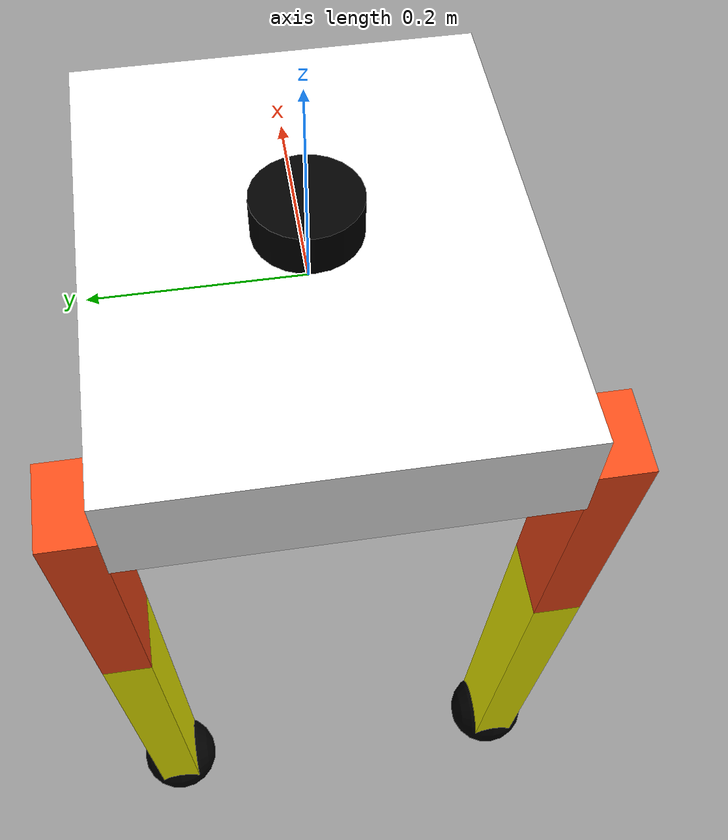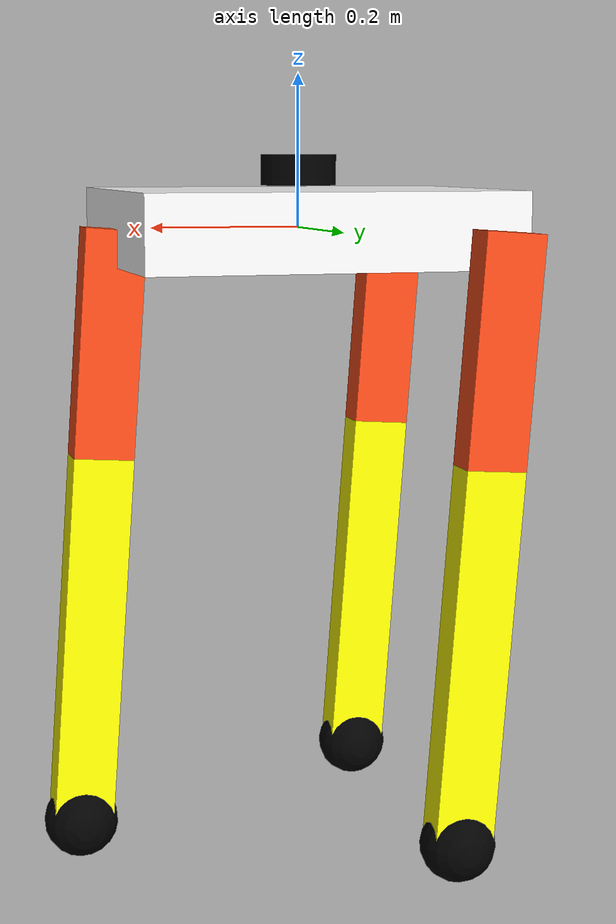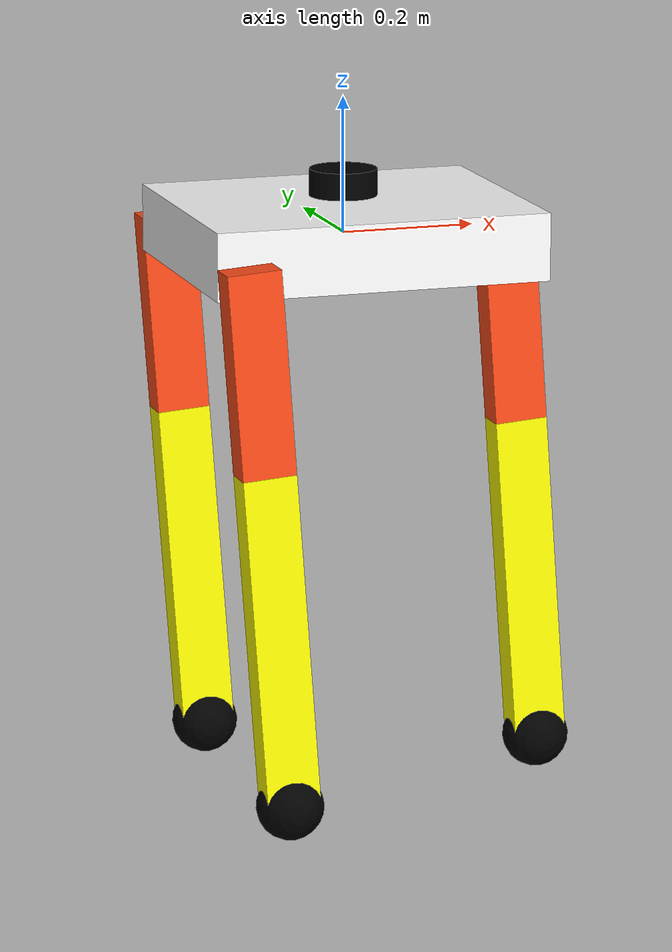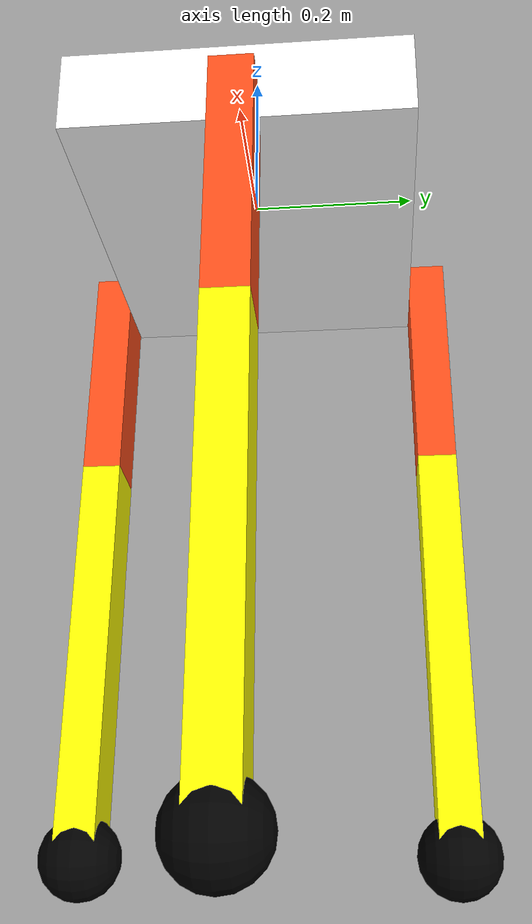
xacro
<?xml version="1.0"?>
<robot xmlns:xacro="http://www.ros.org/wiki/xacro"  name="robot">

<xacro:include filename="materials.xacro" />
<xacro:include filename="inertial_macros.xacro" />
    <!-- base link-->
    <link name="base_link">

    </link>

    <!--main base link-->

    <xacro:include filename="robot_base_square.xacro" />

    <!-- base to chasiis-->
    <joint name="base_link_joint" type="fixed">
        <parent link="base_link"/>
        <child link="main_base_square"/>
        <origin xyz="-0.21 0 0"/>
    </joint>

    <xacro:include filename="robot_legs.xacro" />

    <!-- base to leg 1-->
    <joint name="base_leg1_joint" type="revolute">
        <parent link="main_base_square"/>
        <child link="leg1_1"/>
        <origin xyz="0.46 0 0" rpy="-${pi/2} 0 0"/>
        <limit lower="1" upper="2" effort="200.0" velocity="4.0"/>
        <dynamics friction="0.0" />
        <axis xyz="0 0 1"/>
    </joint>

        <!-- base to leg 2-->
    <joint name="base_leg2_joint" type="revolute">
        <parent link="main_base_square"/>
        <child link="leg2_1"/>
        <origin xyz="0 0.225 0" rpy="-${pi/2} 0 0"/>
        <limit lower="1" upper="2" effort="200.0" velocity="4.0"/>
        <dynamics friction="0.0" />
        <axis xyz="0 0 1"/>
    </joint>

        <!-- base to leg 3-->
    <joint name="base_leg3_joint" type="revolute">
        <parent link="main_base_square"/>
        <child link="leg3_1"/>
        <origin xyz="0 -0.225 0" rpy="${pi/2} 0 0"/>
        <limit lower="1" upper="2" effort="200.0" velocity="4.0"/>
        <dynamics friction="0.0" />
        <axis xyz="0 0 -1"/>
    </joint>

        <!-- adding transmission file here-->

    <xacro:include filename="robot_transmission.xacro" />

</robot>

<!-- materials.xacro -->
<robot xmlns:xacro="http://www.ros.org/wiki/xacro"  >

  <material name="white">
    <color rgba="1 1 1 1"/>
  </material>

  <material name="black">
    <color rgba="0 0 0 1"/>
  </material>

  <material name="orange">
    <color rgba="1 0.3 0.1 1"/>
  </material>

  <material name="red">
    <color rgba="1 0 0 1"/>
  </material>

  <material name="green">
    <color rgba="0 1 0 1"/>
  </material>

  <material name="blue">
    <color rgba="0 0 1 1"/>
  </material>

  <material name="cyan">
    <color rgba="0 1 1 1"/>
  </material>

  <material name="yellow">
    <color rgba="1 1 0 1"/>
  </material>

  <material name="magenta">
    <color rgba="1 0 1 1"/>
  </material>

</robot>

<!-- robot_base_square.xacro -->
<robot xmlns:xacro="http://www.ros.org/wiki/xacro" >

<!--main base plate-->

<link name="main_base_square">
    <visual>
        <origin xyz="0.21 0 0"/>
        <geometry>
            <box size="0.5 0.4 0.1"/>
        </geometry>
        <material name="white"/>
    </visual>

    <collision>
        <origin xyz="0.21 0 0"/>
        <geometry>
            <box size="0.5 0.4 0.1"/>
        </geometry>
    </collision>

    <xacro:inertial_box mass="5" x="0.5" y="0.4" z="0.1">
       <origin xyz="0.21 0 0" rpy="0 0 0"/>
    </xacro:inertial_box>
</link>

<gazebo reference="main_base_square">
    <material>Gazebo/White</material>
    <mu1>100000.0</mu1>
    <mu2>100000.0</mu2>
</gazebo>

<!--joint between base plate and lidar-->

<joint name="base_lidar_joint" type="fixed">
    <parent link="main_base_square"/>
    <child link="lidar"/>
    <origin xyz="0.21 0 0.05" rpy="0 0 0"/>
</joint>

<!--lidar link-->

<link name="lidar">
    <visual>
        <origin xyz="0 0 0.025"/>
        <geometry>
            <cylinder length="0.04" radius="0.05"/>
        </geometry>
        <material name="black"/>
    </visual>

    <collision>
        <origin xyz="0 0 0.025"/>
        <geometry>
            <cylinder length="0.04" radius="0.05"/>
        </geometry>
    </collision>

    <xacro:inertial_cylinder mass="0.1" length="0.04" radius="0.05">
       <origin xyz="0 0 0.025" rpy="0 0 0"/>
    </xacro:inertial_cylinder>
</link>

<gazebo reference="lidar">
    <material>Gazebo/Black</material>
    <mu1>100000.0</mu1>
    <mu2>100000.0</mu2>
</gazebo>

</robot>

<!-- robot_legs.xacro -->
<robot xmlns:xacro="http://www.ros.org/wiki/xacro" >

<!-- leg 1-->
<link name="leg1_1">
    <visual>
        <origin xyz="0.15 0 0"/>
        <geometry>
            <box size="0.3 0.08 0.05"/>
        </geometry>
        <material name="orange"/>
    </visual>

    <collision>
        <origin xyz="0.15 0 0"/>
        <geometry>
            <box size="0.3 0.08 0.05"/>
        </geometry>
    </collision>

    <xacro:inertial_box mass="0.3" x="0.3" y="0.08" z="0.05">
       <origin xyz="0.15 0 0" rpy="0 0 0"/>
    </xacro:inertial_box>
</link>

<gazebo reference="leg1_1">
    <material>Gazebo/Orange</material>
    <mu1>100000.0</mu1>
    <mu2>100000.0</mu2>
</gazebo>

<joint name="leg1_joint" type="revolute">
    <parent link="leg1_1"/>
    <child link="leg1_2"/>
    <origin xyz="0.3 0 0"/>
    <limit lower="0" upper="1" effort="200.0" velocity="4.0"/>
    <dynamics friction="0.0" />
    <axis xyz="0 0 1"/>
</joint>

<link name="leg1_2">
    <visual>
        <origin xyz="0.25 0 0"/>
        <geometry>
            <box size="0.5 0.08 0.05"/>
        </geometry>
        <material name="yellow"/>
    </visual>

    <collision>
        <origin xyz="0.25 0 0"/>
        <geometry>
            <box size="0.5 0.08 0.05"/>
        </geometry>
    </collision>
    <xacro:inertial_box mass="0.5" x="0.5" y="0.08" z="0.05">
       <origin xyz="0.25 0 0" rpy="0 0 0"/>
    </xacro:inertial_box>
</link>

<gazebo reference="leg1_2">
    <material>Gazebo/Yellow</material>
    <surface>
        <friction>
        <ode>
            <mu>100000.0</mu>
            <mu2>100000.0</mu2>
        </ode>
        <torsional>
            <coefficient>1000000</coefficient>
        </torsional>
        </friction>
    </surface>
</gazebo>

<joint name="leg1_tip_joint" type="fixed">
    <parent link="leg1_2"/>
    <child link="leg1_tip"/>
    <origin xyz="0.5 0 0"/>
</joint>

<link name="leg1_tip">
    <visual>
        <origin xyz="0 0 0"/>
        <geometry>
            <sphere radius="0.05"/>
        </geometry>
        <material name="black"/>
    </visual>

    <collision>
        <origin xyz="0 0 0"/>
        <geometry>
            <sphere radius="0.05"/>
        </geometry>
    </collision>
    <xacro:inertial_sphere mass="0.1" radius="0.05">
       <origin xyz="0 0 0" rpy="0 0 0"/>
    </xacro:inertial_sphere>
</link>

<gazebo reference="leg1_tip">
    <material>Gazebo/Black</material>
    <surface>
        <friction>
        <ode>
            <mu>100000.0</mu>
            <mu2>100000.0</mu2>
        </ode>
        <torsional>
            <coefficient>1000000</coefficient>
        </torsional>
        </friction>
    </surface>
</gazebo>
<!-- leg 2-->
<link name="leg2_1">
    <visual>
        <origin xyz="0.15 0 0"/>
        <geometry>
            <box size="0.3 0.08 0.05"/>
        </geometry>
        <material name="orange"/>
    </visual>
    <collision>
        <origin xyz="0.15 0 0"/>
        <geometry>
            <box size="0.3 0.08 0.05"/>
        </geometry>
    </collision>

    <xacro:inertial_box mass="0.3" x="0.3" y="0.08" z="0.05">
       <origin xyz="0.15 0 0" rpy="0 0 0"/>
    </xacro:inertial_box>
</link>

<gazebo reference="leg2_1">
    <material>Gazebo/Orange</material>
    <mu1>100000.0</mu1>
    <mu2>100000.0</mu2>
</gazebo>

<joint name="leg2_joint" type="revolute">
    <parent link="leg2_1"/>
    <child link="leg2_2"/>
    <origin xyz="0.3 0 0"/>
    <limit lower="0" upper="1" effort="200.0" velocity="4.0"/>
    <dynamics friction="0.0" />
    <axis xyz="0 0 1"/>
</joint>

<link name="leg2_2">
    <visual>
        <origin xyz="0.25 0 0"/>
        <geometry>
            <box size="0.5 0.08 0.05"/>
        </geometry>
        <material name="yellow"/>
    </visual>
    <collision>
        <origin xyz="0.25 0 0"/>
        <geometry>
            <box size="0.5 0.08 0.05"/>
        </geometry>
    </collision>
    <xacro:inertial_box mass="0.5" x="0.5" y="0.08" z="0.05">
       <origin xyz="0.25 0 0" rpy="0 0 0"/>
    </xacro:inertial_box>
</link>

<gazebo reference="leg2_2">
    <material>Gazebo/Yellow</material>
    <surface>
        <friction>
        <ode>
            <mu>100000.0</mu>
            <mu2>100000.0</mu2>
        </ode>
        <torsional>
            <coefficient>1000000</coefficient>
        </torsional>
        </friction>
    </surface>
</gazebo>

<joint name="leg2_tip_joint" type="fixed">
    <parent link="leg2_2"/>
    <child link="leg2_tip"/>
    <origin xyz="0.5 0 0"/>
</joint>

<link name="leg2_tip">
    <visual>
        <origin xyz="0 0 0"/>
        <geometry>
            <sphere radius="0.05"/>
        </geometry>
        <material name="black"/>
    </visual>

    <collision>
        <origin xyz="0 0 0"/>
        <geometry>
            <sphere radius="0.05"/>
        </geometry>
    </collision>
    <xacro:inertial_sphere mass="0.1" radius="0.05">
       <origin xyz="0 0 0" rpy="0 0 0"/>
    </xacro:inertial_sphere>
</link>

<gazebo reference="leg2_tip">
    <material>Gazebo/Black</material>
    <surface>
        <friction>
        <ode>
            <mu>100000.0</mu>
            <mu2>100000.0</mu2>
        </ode>
        <torsional>
            <coefficient>1000000</coefficient>
        </torsional>
        </friction>
    </surface>
</gazebo>

<!-- leg 3-->
<link name="leg3_1">
    <visual>
        <origin xyz="0.15 0 0"/>
        <geometry>
            <box size="0.3 0.08 0.05"/>
        </geometry>
        <material name="orange"/>
    </visual>
    <collision>
        <origin xyz="0.15 0 0"/>
        <geometry>
            <box size="0.3 0.08 0.05"/>
        </geometry>
    </collision>
    <xacro:inertial_box mass="0.3" x="0.3" y="0.08" z="0.05">
       <origin xyz="0.15 0 0" rpy="0 0 0"/>
    </xacro:inertial_box>
</link>

<gazebo reference="leg3_1">
    <material>Gazebo/Orange</material>
    <mu1>100000.0</mu1>
    <mu2>100000.0</mu2>
</gazebo>

<joint name="leg3_joint" type="revolute">
    <parent link="leg3_1"/>
    <child link="leg3_2"/>
    <origin xyz="0.3 0 0"/>
    <limit lower="0" upper="1" effort="200.0" velocity="4"/>
    <dynamics friction="0.0" />
    <axis xyz="0 0 -1"/>
</joint>

<link name="leg3_2">
    <visual>
        <origin xyz="0.25 0 0"/>
        <geometry>
            <box size="0.5 0.08 0.05"/>
        </geometry>
        <material name="yellow"/>
    </visual>
    <collision>
        <origin xyz="0.25 0 0"/>
        <geometry>
            <box size="0.5 0.08 0.05"/>
        </geometry>
    </collision>
    <xacro:inertial_box mass="0.5" x="0.5" y="0.08" z="0.05">
       <origin xyz="0.25 0 0" rpy="0 0 0"/>
    </xacro:inertial_box>
</link>

<gazebo reference="leg3_2">
    <material>Gazebo/Yellow</material>
    <surface>
        <friction>
        <ode>
            <mu>100000.0</mu>
            <mu2>100000.0</mu2>
        </ode>
        <torsional>
            <coefficient>1000000</coefficient>
        </torsional>
        </friction>
    </surface>
</gazebo>

<joint name="leg3_tip_joint" type="fixed">
    <parent link="leg3_2"/>
    <child link="leg3_tip"/>
    <origin xyz="0.5 0 0"/>
</joint>

<link name="leg3_tip">
    <visual>
        <origin xyz="0 0 0"/>
        <geometry>
            <sphere radius="0.05"/>
        </geometry>
        <material name="black"/>
    </visual>

    <collision>
        <origin xyz="0 0 0"/>
        <geometry>
            <sphere radius="0.05"/>
        </geometry>
    </collision>
    <xacro:inertial_sphere mass="0.1" radius="0.05">
       <origin xyz="0 0 0" rpy="0 0 0"/>
    </xacro:inertial_sphere>
</link>

<gazebo reference="leg3_tip">
    <material>Gazebo/Black</material>
    <surface>
        <friction>
        <ode>
            <mu>100000.0</mu>
            <mu2>100000.0</mu2>
        </ode>
        <torsional>
            <coefficient>1000000</coefficient>
        </torsional>
        </friction>
    </surface>
</gazebo>

</robot>
